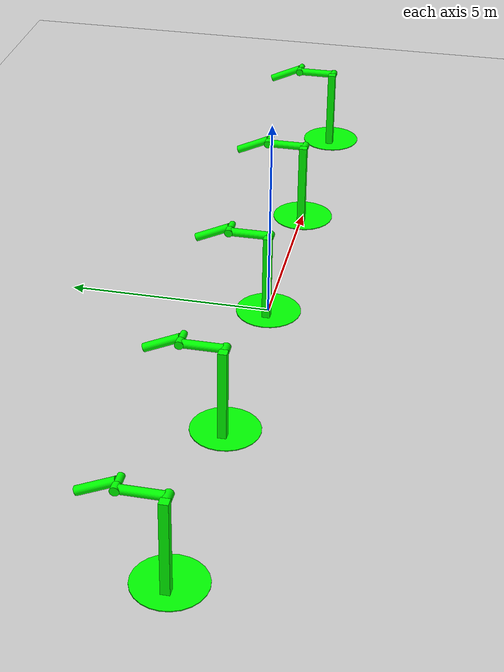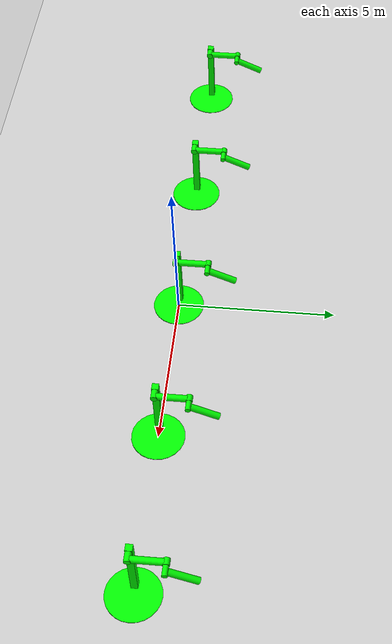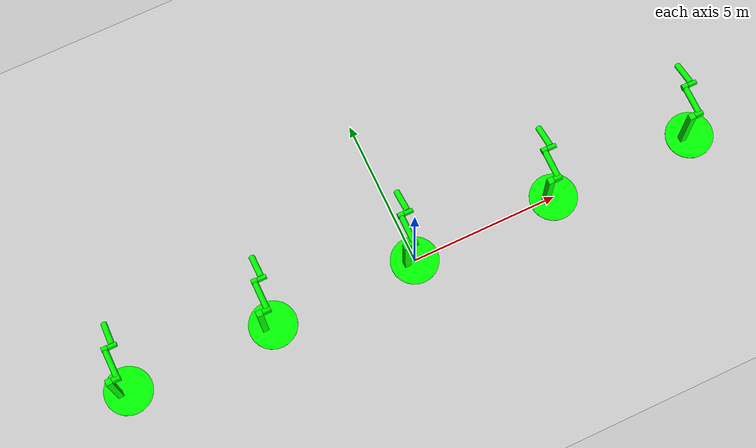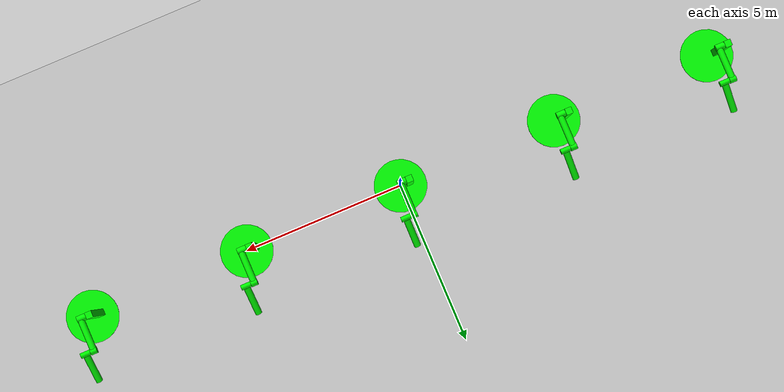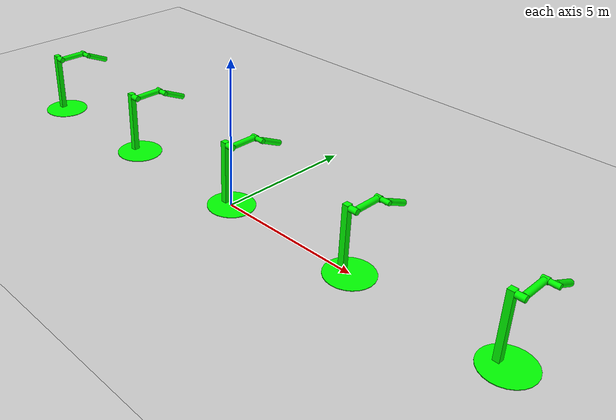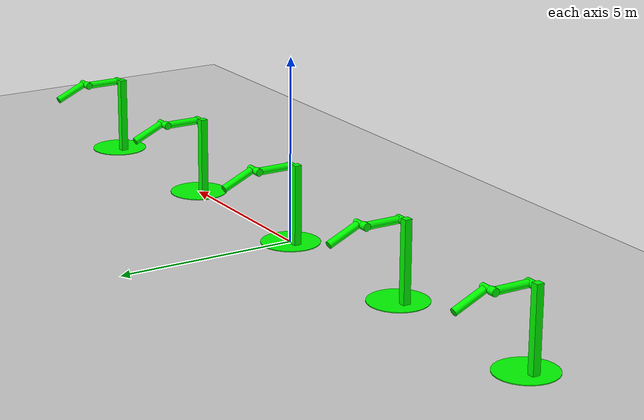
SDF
<?xml version="1.0" ?>
<!--
  to generate a world of 100 pendulums in a 10x10 grid,
  run `erb r=10 c=10 double_pendulums.sdf.erb > double_pendulums.sdf`
-->
<sdf version="1.6">
  <world name="double_pendulums">
    <model name="ground_plane">
      <static>true</static>
      <link name="link">
        <collision name="collision">
          <geometry>
            <plane>
              <normal>0 0 1</normal>
              <size>100 100</size>
            </plane>
          </geometry>
        </collision>
        <visual name="visual">
          <geometry>
            <plane>
              <normal>0 0 1</normal>
              <size>100 100</size>
            </plane>
          </geometry>
          <material>
            <ambient>0.8 0.8 0.8 1</ambient>
            <diffuse>0.8 0.8 0.8 1</diffuse>
            <specular>0.8 0.8 0.8 1</specular>
          </material>
        </visual>
      </link>
    </model>

    <model name="dbl_pendulum_0">
      <pose>-10 0 0 0 0 0</pose>
      <link name="base">
        <inertial>
          <mass>100</mass>
        </inertial>
        <visual name="vis_plate_on_ground">
          <pose>0 0 0.01 0 0 0</pose>
          <geometry>
            <cylinder>
              <radius>0.8</radius>
              <length>0.02</length>
            </cylinder>
          </geometry>
          <material>
            <ambient>0 1 0 1</ambient>
            <diffuse>0 1 0 1</diffuse>
            <specular>0 1 0 1</specular>
          </material>
        </visual>
        <visual name="vis_pole">
          <pose>-0.275 0 1.1 0 0 0</pose>
          <geometry>
            <box>
              <size>0.2 0.2 2.2</size>
            </box>
          </geometry>
          <material>
            <ambient>0 1 0 1</ambient>
            <diffuse>0 1 0 1</diffuse>
            <specular>0 1 0 1</specular>
          </material>
        </visual>
        <collision name="col_plate_on_ground">
          <pose>0 0 0.01 0 0 0</pose>
          <geometry>
            <cylinder>
              <radius>0.8</radius>
              <length>0.02</length>
            </cylinder>
          </geometry>
        </collision>
        <collision name="col_pole">
          <pose>-0.275 0 1.1 0 0 0</pose>
          <geometry>
            <box>
              <size>0.2 0.2 2.2</size>
            </box>
          </geometry>
        </collision>
      </link>
      <!-- upper link, length 1, IC -90 degrees -->
      <link name="upper_link">
        <pose>0 0 2.1 -1.5708 0 0</pose>
        <self_collide>0</self_collide>
        <inertial>
          <pose>0 0 0.5 0 0 0</pose>
        </inertial>
        <visual name="vis_upper_joint">
          <pose>-0.05 0 0 0 1.5708 0</pose>
          <geometry>
            <cylinder>
              <radius>0.1</radius>
              <length>0.3</length>
            </cylinder>
          </geometry>
          <material>
            <ambient>0 1 0 1</ambient>
            <diffuse>0 1 0 1</diffuse>
            <specular>0 1 0 1</specular>
          </material>
        </visual>
        <visual name="vis_lower_joint">
          <pose>0 0 1.0 0 1.5708 0</pose>
          <geometry>
            <cylinder>
              <radius>0.1</radius>
              <length>0.2</length>
            </cylinder>
          </geometry>
          <material>
            <ambient>0 1 0 1</ambient>
            <diffuse>0 1 0 1</diffuse>
            <specular>0 1 0 1</specular>
          </material>
        </visual>
        <visual name="vis_cylinder">
          <pose>0 0 0.5 0 0 0</pose>
          <geometry>
            <cylinder>
              <radius>0.1</radius>
              <length>0.9</length>
            </cylinder>
          </geometry>
          <material>
            <ambient>0 1 0 1</ambient>
            <diffuse>0 1 0 1</diffuse>
            <specular>0 1 0 1</specular>
          </material>
        </visual>
        <collision name="col_upper_joint">
          <pose>-0.05 0 0 0 1.5708 0</pose>
          <geometry>
            <cylinder>
              <radius>0.1</radius>
              <length>0.3</length>
            </cylinder>
          </geometry>
        </collision>
        <collision name="col_lower_joint">
          <pose>0 0 1.0 0 1.5708 0</pose>
          <geometry>
            <cylinder>
              <radius>0.1</radius>
              <length>0.2</length>
            </cylinder>
          </geometry>
        </collision>
        <collision name="col_cylinder">
          <pose>0 0 0.5 0 0 0</pose>
          <geometry>
            <cylinder>
              <radius>0.1</radius>
              <length>0.9</length>
            </cylinder>
          </geometry>
        </collision>
      </link>
      <!-- lower link, length 1, IC ~-120 degrees more -->
      <link name="lower_link">
        <pose>0.25 1.0 2.1 -2 0 0</pose>
        <self_collide>0</self_collide>
        <inertial>
          <pose>0 0 0.5 0 0 0</pose>
        </inertial>
        <visual name="vis_lower_joint">
          <pose>0 0 0 0 1.5708 0</pose>
          <geometry>
            <cylinder>
              <radius>0.08</radius>
              <length>0.3</length>
            </cylinder>
          </geometry>
          <material>
            <ambient>0 1 0 1</ambient>
            <diffuse>0 1 0 1</diffuse>
            <specular>0 1 0 1</specular>
          </material>
        </visual>
        <visual name="vis_cylinder">
          <pose>0 0 0.5 0 0 0</pose>
          <geometry>
            <cylinder>
              <radius>0.1</radius>
              <length>0.9</length>
            </cylinder>
          </geometry>
          <material>
            <ambient>0 1 0 1</ambient>
            <diffuse>0 1 0 1</diffuse>
            <specular>0 1 0 1</specular>
          </material>
        </visual>
        <collision name="col_lower_joint">
          <pose>0 0 0 0 1.5708 0</pose>
          <geometry>
            <cylinder>
              <radius>0.08</radius>
              <length>0.3</length>
            </cylinder>
          </geometry>
        </collision>
        <collision name="col_cylinder">
          <pose>0 0 0.5 0 0 0</pose>
          <geometry>
            <cylinder>
              <radius>0.1</radius>
              <length>0.9</length>
            </cylinder>
          </geometry>
        </collision>
      </link>
      <!-- pin joint for upper link, at origin of upper link -->
      <joint name="upper_joint" type="revolute">
        <parent>base</parent>
        <child>upper_link</child>
        <axis>
          <xyz>1.0 0 0</xyz>
        </axis>
      </joint>
      <!-- pin joint for lower link, at origin of child link -->
      <joint name="lower_joint" type="revolute">
        <parent>upper_link</parent>
        <child>lower_link</child>
        <axis>
          <xyz>1.0 0 0</xyz>
        </axis>
      </joint>
    </model>

    <model name="dbl_pendulum_1">
      <pose>-5 0 0 0 0 0</pose>
      <link name="base">
        <inertial>
          <mass>100</mass>
        </inertial>
        <visual name="vis_plate_on_ground">
          <pose>0 0 0.01 0 0 0</pose>
          <geometry>
            <cylinder>
              <radius>0.8</radius>
              <length>0.02</length>
            </cylinder>
          </geometry>
          <material>
            <ambient>0 1 0 1</ambient>
            <diffuse>0 1 0 1</diffuse>
            <specular>0 1 0 1</specular>
          </material>
        </visual>
        <visual name="vis_pole">
          <pose>-0.275 0 1.1 0 0 0</pose>
          <geometry>
            <box>
              <size>0.2 0.2 2.2</size>
            </box>
          </geometry>
          <material>
            <ambient>0 1 0 1</ambient>
            <diffuse>0 1 0 1</diffuse>
            <specular>0 1 0 1</specular>
          </material>
        </visual>
        <collision name="col_plate_on_ground">
          <pose>0 0 0.01 0 0 0</pose>
          <geometry>
            <cylinder>
              <radius>0.8</radius>
              <length>0.02</length>
            </cylinder>
          </geometry>
        </collision>
        <collision name="col_pole">
          <pose>-0.275 0 1.1 0 0 0</pose>
          <geometry>
            <box>
              <size>0.2 0.2 2.2</size>
            </box>
          </geometry>
        </collision>
      </link>
      <!-- upper link, length 1, IC -90 degrees -->
      <link name="upper_link">
        <pose>0 0 2.1 -1.5708 0 0</pose>
        <self_collide>0</self_collide>
        <inertial>
          <pose>0 0 0.5 0 0 0</pose>
        </inertial>
        <visual name="vis_upper_joint">
          <pose>-0.05 0 0 0 1.5708 0</pose>
          <geometry>
            <cylinder>
              <radius>0.1</radius>
              <length>0.3</length>
            </cylinder>
          </geometry>
          <material>
            <ambient>0 1 0 1</ambient>
            <diffuse>0 1 0 1</diffuse>
            <specular>0 1 0 1</specular>
          </material>
        </visual>
        <visual name="vis_lower_joint">
          <pose>0 0 1.0 0 1.5708 0</pose>
          <geometry>
            <cylinder>
              <radius>0.1</radius>
              <length>0.2</length>
            </cylinder>
          </geometry>
          <material>
            <ambient>0 1 0 1</ambient>
            <diffuse>0 1 0 1</diffuse>
            <specular>0 1 0 1</specular>
          </material>
        </visual>
        <visual name="vis_cylinder">
          <pose>0 0 0.5 0 0 0</pose>
          <geometry>
            <cylinder>
              <radius>0.1</radius>
              <length>0.9</length>
            </cylinder>
          </geometry>
          <material>
            <ambient>0 1 0 1</ambient>
            <diffuse>0 1 0 1</diffuse>
            <specular>0 1 0 1</specular>
          </material>
        </visual>
        <collision name="col_upper_joint">
          <pose>-0.05 0 0 0 1.5708 0</pose>
          <geometry>
            <cylinder>
              <radius>0.1</radius>
              <length>0.3</length>
            </cylinder>
          </geometry>
        </collision>
        <collision name="col_lower_joint">
          <pose>0 0 1.0 0 1.5708 0</pose>
          <geometry>
            <cylinder>
              <radius>0.1</radius>
              <length>0.2</length>
            </cylinder>
          </geometry>
        </collision>
        <collision name="col_cylinder">
          <pose>0 0 0.5 0 0 0</pose>
          <geometry>
            <cylinder>
              <radius>0.1</radius>
              <length>0.9</length>
            </cylinder>
          </geometry>
        </collision>
      </link>
      <!-- lower link, length 1, IC ~-120 degrees more -->
      <link name="lower_link">
        <pose>0.25 1.0 2.1 -2 0 0</pose>
        <self_collide>0</self_collide>
        <inertial>
          <pose>0 0 0.5 0 0 0</pose>
        </inertial>
        <visual name="vis_lower_joint">
          <pose>0 0 0 0 1.5708 0</pose>
          <geometry>
            <cylinder>
              <radius>0.08</radius>
              <length>0.3</length>
            </cylinder>
          </geometry>
          <material>
            <ambient>0 1 0 1</ambient>
            <diffuse>0 1 0 1</diffuse>
            <specular>0 1 0 1</specular>
          </material>
        </visual>
        <visual name="vis_cylinder">
          <pose>0 0 0.5 0 0 0</pose>
          <geometry>
            <cylinder>
              <radius>0.1</radius>
              <length>0.9</length>
            </cylinder>
          </geometry>
          <material>
            <ambient>0 1 0 1</ambient>
            <diffuse>0 1 0 1</diffuse>
            <specular>0 1 0 1</specular>
          </material>
        </visual>
        <collision name="col_lower_joint">
          <pose>0 0 0 0 1.5708 0</pose>
          <geometry>
            <cylinder>
              <radius>0.08</radius>
              <length>0.3</length>
            </cylinder>
          </geometry>
        </collision>
        <collision name="col_cylinder">
          <pose>0 0 0.5 0 0 0</pose>
          <geometry>
            <cylinder>
              <radius>0.1</radius>
              <length>0.9</length>
            </cylinder>
          </geometry>
        </collision>
      </link>
      <!-- pin joint for upper link, at origin of upper link -->
      <joint name="upper_joint" type="revolute">
        <parent>base</parent>
        <child>upper_link</child>
        <axis>
          <xyz>1.0 0 0</xyz>
        </axis>
      </joint>
      <!-- pin joint for lower link, at origin of child link -->
      <joint name="lower_joint" type="revolute">
        <parent>upper_link</parent>
        <child>lower_link</child>
        <axis>
          <xyz>1.0 0 0</xyz>
        </axis>
      </joint>
    </model>

    <model name="dbl_pendulum_2">
      <pose>0 0 0 0 0 0</pose>
      <link name="base">
        <inertial>
          <mass>100</mass>
        </inertial>
        <visual name="vis_plate_on_ground">
          <pose>0 0 0.01 0 0 0</pose>
          <geometry>
            <cylinder>
              <radius>0.8</radius>
              <length>0.02</length>
            </cylinder>
          </geometry>
          <material>
            <ambient>0 1 0 1</ambient>
            <diffuse>0 1 0 1</diffuse>
            <specular>0 1 0 1</specular>
          </material>
        </visual>
        <visual name="vis_pole">
          <pose>-0.275 0 1.1 0 0 0</pose>
          <geometry>
            <box>
              <size>0.2 0.2 2.2</size>
            </box>
          </geometry>
          <material>
            <ambient>0 1 0 1</ambient>
            <diffuse>0 1 0 1</diffuse>
            <specular>0 1 0 1</specular>
          </material>
        </visual>
        <collision name="col_plate_on_ground">
          <pose>0 0 0.01 0 0 0</pose>
          <geometry>
            <cylinder>
              <radius>0.8</radius>
              <length>0.02</length>
            </cylinder>
          </geometry>
        </collision>
        <collision name="col_pole">
          <pose>-0.275 0 1.1 0 0 0</pose>
          <geometry>
            <box>
              <size>0.2 0.2 2.2</size>
            </box>
          </geometry>
        </collision>
      </link>
      <!-- upper link, length 1, IC -90 degrees -->
      <link name="upper_link">
        <pose>0 0 2.1 -1.5708 0 0</pose>
        <self_collide>0</self_collide>
        <inertial>
          <pose>0 0 0.5 0 0 0</pose>
        </inertial>
        <visual name="vis_upper_joint">
          <pose>-0.05 0 0 0 1.5708 0</pose>
          <geometry>
            <cylinder>
              <radius>0.1</radius>
              <length>0.3</length>
            </cylinder>
          </geometry>
          <material>
            <ambient>0 1 0 1</ambient>
            <diffuse>0 1 0 1</diffuse>
            <specular>0 1 0 1</specular>
          </material>
        </visual>
        <visual name="vis_lower_joint">
          <pose>0 0 1.0 0 1.5708 0</pose>
          <geometry>
            <cylinder>
              <radius>0.1</radius>
              <length>0.2</length>
            </cylinder>
          </geometry>
          <material>
            <ambient>0 1 0 1</ambient>
            <diffuse>0 1 0 1</diffuse>
            <specular>0 1 0 1</specular>
          </material>
        </visual>
        <visual name="vis_cylinder">
          <pose>0 0 0.5 0 0 0</pose>
          <geometry>
            <cylinder>
              <radius>0.1</radius>
              <length>0.9</length>
            </cylinder>
          </geometry>
          <material>
            <ambient>0 1 0 1</ambient>
            <diffuse>0 1 0 1</diffuse>
            <specular>0 1 0 1</specular>
          </material>
        </visual>
        <collision name="col_upper_joint">
          <pose>-0.05 0 0 0 1.5708 0</pose>
          <geometry>
            <cylinder>
              <radius>0.1</radius>
              <length>0.3</length>
            </cylinder>
          </geometry>
        </collision>
        <collision name="col_lower_joint">
          <pose>0 0 1.0 0 1.5708 0</pose>
          <geometry>
            <cylinder>
              <radius>0.1</radius>
              <length>0.2</length>
            </cylinder>
          </geometry>
        </collision>
        <collision name="col_cylinder">
          <pose>0 0 0.5 0 0 0</pose>
          <geometry>
            <cylinder>
              <radius>0.1</radius>
              <length>0.9</length>
            </cylinder>
          </geometry>
        </collision>
      </link>
      <!-- lower link, length 1, IC ~-120 degrees more -->
      <link name="lower_link">
        <pose>0.25 1.0 2.1 -2 0 0</pose>
        <self_collide>0</self_collide>
        <inertial>
          <pose>0 0 0.5 0 0 0</pose>
        </inertial>
        <visual name="vis_lower_joint">
          <pose>0 0 0 0 1.5708 0</pose>
          <geometry>
            <cylinder>
              <radius>0.08</radius>
              <length>0.3</length>
            </cylinder>
          </geometry>
          <material>
            <ambient>0 1 0 1</ambient>
            <diffuse>0 1 0 1</diffuse>
            <specular>0 1 0 1</specular>
          </material>
        </visual>
        <visual name="vis_cylinder">
          <pose>0 0 0.5 0 0 0</pose>
          <geometry>
            <cylinder>
              <radius>0.1</radius>
              <length>0.9</length>
            </cylinder>
          </geometry>
          <material>
            <ambient>0 1 0 1</ambient>
            <diffuse>0 1 0 1</diffuse>
            <specular>0 1 0 1</specular>
          </material>
        </visual>
        <collision name="col_lower_joint">
          <pose>0 0 0 0 1.5708 0</pose>
          <geometry>
            <cylinder>
              <radius>0.08</radius>
              <length>0.3</length>
            </cylinder>
          </geometry>
        </collision>
        <collision name="col_cylinder">
          <pose>0 0 0.5 0 0 0</pose>
          <geometry>
            <cylinder>
              <radius>0.1</radius>
              <length>0.9</length>
            </cylinder>
          </geometry>
        </collision>
      </link>
      <!-- pin joint for upper link, at origin of upper link -->
      <joint name="upper_joint" type="revolute">
        <parent>base</parent>
        <child>upper_link</child>
        <axis>
          <xyz>1.0 0 0</xyz>
        </axis>
      </joint>
      <!-- pin joint for lower link, at origin of child link -->
      <joint name="lower_joint" type="revolute">
        <parent>upper_link</parent>
        <child>lower_link</child>
        <axis>
          <xyz>1.0 0 0</xyz>
        </axis>
      </joint>
    </model>

    <model name="dbl_pendulum_3">
      <pose>5 0 0 0 0 0</pose>
      <link name="base">
        <inertial>
          <mass>100</mass>
        </inertial>
        <visual name="vis_plate_on_ground">
          <pose>0 0 0.01 0 0 0</pose>
          <geometry>
            <cylinder>
              <radius>0.8</radius>
              <length>0.02</length>
            </cylinder>
          </geometry>
          <material>
            <ambient>0 1 0 1</ambient>
            <diffuse>0 1 0 1</diffuse>
            <specular>0 1 0 1</specular>
          </material>
        </visual>
        <visual name="vis_pole">
          <pose>-0.275 0 1.1 0 0 0</pose>
          <geometry>
            <box>
              <size>0.2 0.2 2.2</size>
            </box>
          </geometry>
          <material>
            <ambient>0 1 0 1</ambient>
            <diffuse>0 1 0 1</diffuse>
            <specular>0 1 0 1</specular>
          </material>
        </visual>
        <collision name="col_plate_on_ground">
          <pose>0 0 0.01 0 0 0</pose>
          <geometry>
            <cylinder>
              <radius>0.8</radius>
              <length>0.02</length>
            </cylinder>
          </geometry>
        </collision>
        <collision name="col_pole">
          <pose>-0.275 0 1.1 0 0 0</pose>
          <geometry>
            <box>
              <size>0.2 0.2 2.2</size>
            </box>
          </geometry>
        </collision>
      </link>
      <!-- upper link, length 1, IC -90 degrees -->
      <link name="upper_link">
        <pose>0 0 2.1 -1.5708 0 0</pose>
        <self_collide>0</self_collide>
        <inertial>
          <pose>0 0 0.5 0 0 0</pose>
        </inertial>
        <visual name="vis_upper_joint">
          <pose>-0.05 0 0 0 1.5708 0</pose>
          <geometry>
            <cylinder>
              <radius>0.1</radius>
              <length>0.3</length>
            </cylinder>
          </geometry>
          <material>
            <ambient>0 1 0 1</ambient>
            <diffuse>0 1 0 1</diffuse>
            <specular>0 1 0 1</specular>
          </material>
        </visual>
        <visual name="vis_lower_joint">
          <pose>0 0 1.0 0 1.5708 0</pose>
          <geometry>
            <cylinder>
              <radius>0.1</radius>
              <length>0.2</length>
            </cylinder>
          </geometry>
          <material>
            <ambient>0 1 0 1</ambient>
            <diffuse>0 1 0 1</diffuse>
            <specular>0 1 0 1</specular>
          </material>
        </visual>
        <visual name="vis_cylinder">
          <pose>0 0 0.5 0 0 0</pose>
          <geometry>
            <cylinder>
              <radius>0.1</radius>
              <length>0.9</length>
            </cylinder>
          </geometry>
          <material>
            <ambient>0 1 0 1</ambient>
            <diffuse>0 1 0 1</diffuse>
            <specular>0 1 0 1</specular>
          </material>
        </visual>
        <collision name="col_upper_joint">
          <pose>-0.05 0 0 0 1.5708 0</pose>
          <geometry>
            <cylinder>
              <radius>0.1</radius>
              <length>0.3</length>
            </cylinder>
          </geometry>
        </collision>
        <collision name="col_lower_joint">
          <pose>0 0 1.0 0 1.5708 0</pose>
          <geometry>
            <cylinder>
              <radius>0.1</radius>
              <length>0.2</length>
            </cylinder>
          </geometry>
        </collision>
        <collision name="col_cylinder">
          <pose>0 0 0.5 0 0 0</pose>
          <geometry>
            <cylinder>
              <radius>0.1</radius>
              <length>0.9</length>
            </cylinder>
          </geometry>
        </collision>
      </link>
      <!-- lower link, length 1, IC ~-120 degrees more -->
      <link name="lower_link">
        <pose>0.25 1.0 2.1 -2 0 0</pose>
        <self_collide>0</self_collide>
        <inertial>
          <pose>0 0 0.5 0 0 0</pose>
        </inertial>
        <visual name="vis_lower_joint">
          <pose>0 0 0 0 1.5708 0</pose>
          <geometry>
            <cylinder>
              <radius>0.08</radius>
              <length>0.3</length>
            </cylinder>
          </geometry>
          <material>
            <ambient>0 1 0 1</ambient>
            <diffuse>0 1 0 1</diffuse>
            <specular>0 1 0 1</specular>
          </material>
        </visual>
        <visual name="vis_cylinder">
          <pose>0 0 0.5 0 0 0</pose>
          <geometry>
            <cylinder>
              <radius>0.1</radius>
              <length>0.9</length>
            </cylinder>
          </geometry>
          <material>
            <ambient>0 1 0 1</ambient>
            <diffuse>0 1 0 1</diffuse>
            <specular>0 1 0 1</specular>
          </material>
        </visual>
        <collision name="col_lower_joint">
          <pose>0 0 0 0 1.5708 0</pose>
          <geometry>
            <cylinder>
              <radius>0.08</radius>
              <length>0.3</length>
            </cylinder>
          </geometry>
        </collision>
        <collision name="col_cylinder">
          <pose>0 0 0.5 0 0 0</pose>
          <geometry>
            <cylinder>
              <radius>0.1</radius>
              <length>0.9</length>
            </cylinder>
          </geometry>
        </collision>
      </link>
      <!-- pin joint for upper link, at origin of upper link -->
      <joint name="upper_joint" type="revolute">
        <parent>base</parent>
        <child>upper_link</child>
        <axis>
          <xyz>1.0 0 0</xyz>
        </axis>
      </joint>
      <!-- pin joint for lower link, at origin of child link -->
      <joint name="lower_joint" type="revolute">
        <parent>upper_link</parent>
        <child>lower_link</child>
        <axis>
          <xyz>1.0 0 0</xyz>
        </axis>
      </joint>
    </model>

    <model name="dbl_pendulum_4">
      <pose>10 0 0 0 0 0</pose>
      <link name="base">
        <inertial>
          <mass>100</mass>
        </inertial>
        <visual name="vis_plate_on_ground">
          <pose>0 0 0.01 0 0 0</pose>
          <geometry>
            <cylinder>
              <radius>0.8</radius>
              <length>0.02</length>
            </cylinder>
          </geometry>
          <material>
            <ambient>0 1 0 1</ambient>
            <diffuse>0 1 0 1</diffuse>
            <specular>0 1 0 1</specular>
          </material>
        </visual>
        <visual name="vis_pole">
          <pose>-0.275 0 1.1 0 0 0</pose>
          <geometry>
            <box>
              <size>0.2 0.2 2.2</size>
            </box>
          </geometry>
          <material>
            <ambient>0 1 0 1</ambient>
            <diffuse>0 1 0 1</diffuse>
            <specular>0 1 0 1</specular>
          </material>
        </visual>
        <collision name="col_plate_on_ground">
          <pose>0 0 0.01 0 0 0</pose>
          <geometry>
            <cylinder>
              <radius>0.8</radius>
              <length>0.02</length>
            </cylinder>
          </geometry>
        </collision>
        <collision name="col_pole">
          <pose>-0.275 0 1.1 0 0 0</pose>
          <geometry>
            <box>
              <size>0.2 0.2 2.2</size>
            </box>
          </geometry>
        </collision>
      </link>
      <!-- upper link, length 1, IC -90 degrees -->
      <link name="upper_link">
        <pose>0 0 2.1 -1.5708 0 0</pose>
        <self_collide>0</self_collide>
        <inertial>
          <pose>0 0 0.5 0 0 0</pose>
        </inertial>
        <visual name="vis_upper_joint">
          <pose>-0.05 0 0 0 1.5708 0</pose>
          <geometry>
            <cylinder>
              <radius>0.1</radius>
              <length>0.3</length>
            </cylinder>
          </geometry>
          <material>
            <ambient>0 1 0 1</ambient>
            <diffuse>0 1 0 1</diffuse>
            <specular>0 1 0 1</specular>
          </material>
        </visual>
        <visual name="vis_lower_joint">
          <pose>0 0 1.0 0 1.5708 0</pose>
          <geometry>
            <cylinder>
              <radius>0.1</radius>
              <length>0.2</length>
            </cylinder>
          </geometry>
          <material>
            <ambient>0 1 0 1</ambient>
            <diffuse>0 1 0 1</diffuse>
            <specular>0 1 0 1</specular>
          </material>
        </visual>
        <visual name="vis_cylinder">
          <pose>0 0 0.5 0 0 0</pose>
          <geometry>
            <cylinder>
              <radius>0.1</radius>
              <length>0.9</length>
            </cylinder>
          </geometry>
          <material>
            <ambient>0 1 0 1</ambient>
            <diffuse>0 1 0 1</diffuse>
            <specular>0 1 0 1</specular>
          </material>
        </visual>
        <collision name="col_upper_joint">
          <pose>-0.05 0 0 0 1.5708 0</pose>
          <geometry>
            <cylinder>
              <radius>0.1</radius>
              <length>0.3</length>
            </cylinder>
          </geometry>
        </collision>
        <collision name="col_lower_joint">
          <pose>0 0 1.0 0 1.5708 0</pose>
          <geometry>
            <cylinder>
              <radius>0.1</radius>
              <length>0.2</length>
            </cylinder>
          </geometry>
        </collision>
        <collision name="col_cylinder">
          <pose>0 0 0.5 0 0 0</pose>
          <geometry>
            <cylinder>
              <radius>0.1</radius>
              <length>0.9</length>
            </cylinder>
          </geometry>
        </collision>
      </link>
      <!-- lower link, length 1, IC ~-120 degrees more -->
      <link name="lower_link">
        <pose>0.25 1.0 2.1 -2 0 0</pose>
        <self_collide>0</self_collide>
        <inertial>
          <pose>0 0 0.5 0 0 0</pose>
        </inertial>
        <visual name="vis_lower_joint">
          <pose>0 0 0 0 1.5708 0</pose>
          <geometry>
            <cylinder>
              <radius>0.08</radius>
              <length>0.3</length>
            </cylinder>
          </geometry>
          <material>
            <ambient>0 1 0 1</ambient>
            <diffuse>0 1 0 1</diffuse>
            <specular>0 1 0 1</specular>
          </material>
        </visual>
        <visual name="vis_cylinder">
          <pose>0 0 0.5 0 0 0</pose>
          <geometry>
            <cylinder>
              <radius>0.1</radius>
              <length>0.9</length>
            </cylinder>
          </geometry>
          <material>
            <ambient>0 1 0 1</ambient>
            <diffuse>0 1 0 1</diffuse>
            <specular>0 1 0 1</specular>
          </material>
        </visual>
        <collision name="col_lower_joint">
          <pose>0 0 0 0 1.5708 0</pose>
          <geometry>
            <cylinder>
              <radius>0.08</radius>
              <length>0.3</length>
            </cylinder>
          </geometry>
        </collision>
        <collision name="col_cylinder">
          <pose>0 0 0.5 0 0 0</pose>
          <geometry>
            <cylinder>
              <radius>0.1</radius>
              <length>0.9</length>
            </cylinder>
          </geometry>
        </collision>
      </link>
      <!-- pin joint for upper link, at origin of upper link -->
      <joint name="upper_joint" type="revolute">
        <parent>base</parent>
        <child>upper_link</child>
        <axis>
          <xyz>1.0 0 0</xyz>
        </axis>
      </joint>
      <!-- pin joint for lower link, at origin of child link -->
      <joint name="lower_joint" type="revolute">
        <parent>upper_link</parent>
        <child>lower_link</child>
        <axis>
          <xyz>1.0 0 0</xyz>
        </axis>
      </joint>
    </model>

  </world>
</sdf>
